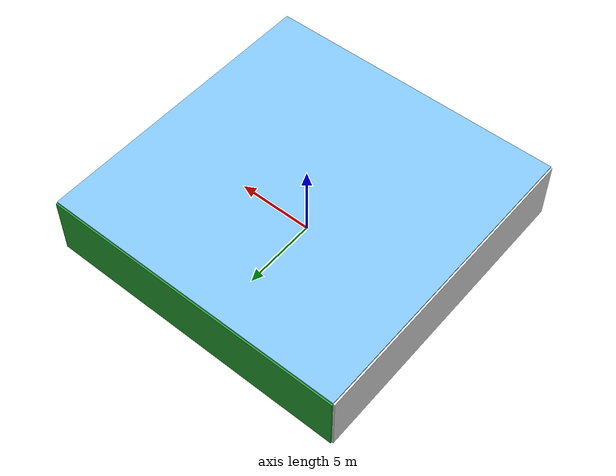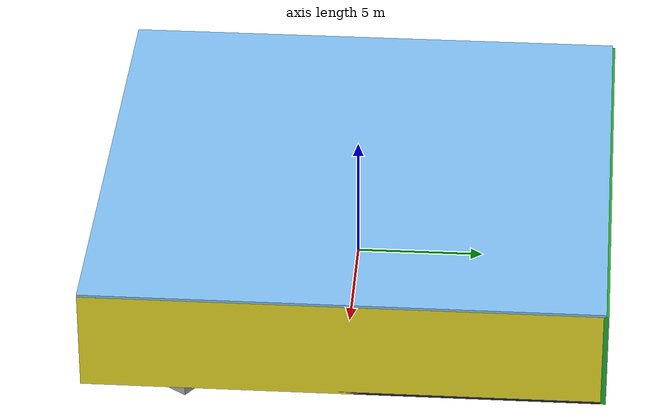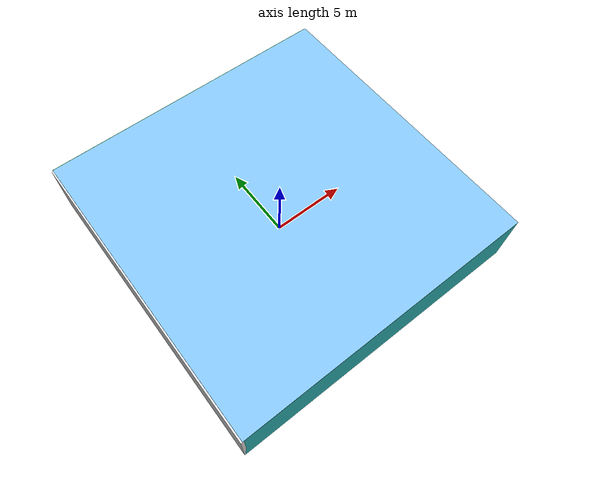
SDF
<sdf version="1.4">
 <world name="default">
  <physics type="ode">
   <max_step_size>0.001</max_step_size>
   <real_time_factor>1</real_time_factor>
   <real_time_update_rate>1000</real_time_update_rate>
   <gravity>0 0 -9.8</gravity>
  </physics>
  <scene><ambient>0.4 0.4 0.4 1</ambient><background>0.7 0.7 0.7 1</background><shadows>1</shadows></scene>
  <model name="Surrounding">
   <static>1</static>
   <link name="Ceiling">
    <collision name="Ceiling_Collision"><geometry><box><size>20 20 0.1</size></box></geometry></collision>
    <visual name="Ceiling_Visual">
     <geometry><box><size>20 20 0.1</size></box></geometry>
     <material>
      <script><uri>file://media/materials/scripts/gazebo.material</uri><name>Gazebo/SkyBlue</name></script>
     </material>
    </visual>
    <pose>0 0 4.05 0 0 0</pose>
   </link>
   <link name="Wall_South">
    <collision name="Wall_South_Collision">
     <geometry><box><size>20 0 4</size></box></geometry>
     <pose>0 0 2 0 -0 0</pose>
    </collision>
    <visual name="Wall_South_Visual">
     <pose>0 0 2 0 -0 0</pose>
     <geometry><box><size>20 0 4</size></box></geometry>
     <material>
      <script>
       <uri>file://media/materials/scripts/gazebo.material</uri>
       <name>Gazebo/TurquoiseGlowOutline</name>
      </script>
     </material>
    </visual>
    <velocity_decay><linear>0</linear><angular>0</angular></velocity_decay>
    <pose>0 -10 0 0 -0 0</pose>
   </link>
   <link name="Wall_East">
    <collision name="Wall_21_Collision">
     <geometry><box><size>20 0 4</size></box></geometry>
     <pose>0 0 2 0 -0 0</pose>
    </collision>
    <visual name="Wall_21_Visual">
     <pose>0 0 2 0 -0 0</pose>
     <geometry><box><size>20 0 4</size></box></geometry>
     <material>
      <script><uri>file://media/materials/scripts/gazebo.material</uri><name>Gazebo/YellowGlow</name></script>
     </material>
    </visual>
    <velocity_decay><linear>0</linear><angular>0</angular></velocity_decay>
    <pose>10 0 0 0 -0 1.5708</pose>
   </link>
   <link name="Wall_North">
    <collision name="Wall_22_Collision">
     <geometry><box><size>20 0.2 4</size></box></geometry>
     <pose>0 0 2 0 -0 0</pose>
    </collision>
    <visual name="Wall_22_Visual">
     <pose>0 0 2 0 -0 0</pose>
     <geometry><box><size>20 0.2 4</size></box></geometry>
     <material>
      <script><uri>file://media/materials/scripts/gazebo.material</uri><name>Gazebo/GreenGlow</name></script>
     </material>
    </visual>
    <velocity_decay><linear>0</linear><angular>0</angular></velocity_decay>
    <pose>0 10 0 0 -0 0</pose>
   </link>
   <link name="Wall_West">
    <collision name="Wall_23_Collision">
     <geometry><box><size>20 0.2 4</size></box></geometry>
     <pose>0 0 2 0 -0 0</pose>
    </collision>
    <visual name="Wall_23_Visual">
     <pose>0 0 2 0 -0 0</pose>
     <geometry><box><size>20 0.2 4</size></box></geometry>
     <material>
      <script><uri>file://media/materials/scripts/gazebo.material</uri><name>Gazebo/White</name></script>
     </material>
    </visual>
    <velocity_decay><linear>0</linear><angular>0</angular></velocity_decay>
    <pose>-10 0 0 0 0 -1.5708</pose>
   </link>
   <link name="Ground_link">
    <collision name="collision">
     <pose>0 0 .05 0 -0 0</pose>
     <geometry><box><size>20 20 0.1</size></box></geometry>
    </collision>
    <visual name="visual">
     <pose>0 0 .05 0 -0 0</pose>
     <geometry><box><size>20 20 0.1</size></box></geometry>
     <material>
      <script><uri>file://media/materials/scripts/gazebo.material</uri><name>Gazebo/Black</name></script>
     </material>
    </visual>
   </link>
   <static>1</static>
  </model>
  <spherical_coordinates>
   <surface_model>EARTH_WGS84</surface_model>
   <latitude_deg>0</latitude_deg>
   <longitude_deg>0</longitude_deg>
   <elevation>0</elevation>
   <heading_deg>0</heading_deg>
  </spherical_coordinates>
  <light name="lightball_0" type="diffuse">
   <diffuse>0.8 0.8 0.8 1</diffuse>
   <specular>0.2 0.2 0.2 1</specular>
   <attenuation>
    <range>100</range>
    <constant>0.7</constant>
    <linear>0.01</linear>
    <quadratic>0.001</quadratic>
   </attenuation>
   <direction>-0.5 0.1 -0.9</direction>
   <pose>-5.40286606653 8.04044214486 2.21904870855 0 0 0</pose>
  </light>
  <light name="lightball_1" type="diffuse">
   <diffuse>0.8 0.8 0.8 1</diffuse>
   <specular>0.2 0.2 0.2 1</specular>
   <attenuation>
    <range>100</range>
    <constant>0.7</constant>
    <linear>0.01</linear>
    <quadratic>0.001</quadratic>
   </attenuation>
   <direction>-0.5 0.1 -0.9</direction>
   <pose>5.45210643862 -5.12716403334 1.52860342609 0 0 0</pose>
  </light>
  <light name="lightball_2" type="diffuse">
   <diffuse>0.8 0.8 0.8 1</diffuse>
   <specular>0.2 0.2 0.2 1</specular>
   <attenuation>
    <range>100</range>
    <constant>0.7</constant>
    <linear>0.01</linear>
    <quadratic>0.001</quadratic>
   </attenuation>
   <direction>-0.5 0.1 -0.9</direction>
   <pose>-0.863692920424 2.70255459967 2.65258002631 0 0 0</pose>
  </light>
  <light name="lightball_3" type="diffuse">
   <diffuse>0.8 0.8 0.8 1</diffuse>
   <specular>0.2 0.2 0.2 1</specular>
   <attenuation>
    <range>100</range>
    <constant>0.7</constant>
    <linear>0.01</linear>
    <quadratic>0.001</quadratic>
   </attenuation>
   <direction>-0.5 0.1 -0.9</direction>
   <pose>-7.67006536575 -8.33806512639 2.2357343948 0 0 0</pose>
  </light>
  <light name="lightball_4" type="diffuse">
   <diffuse>0.8 0.8 0.8 1</diffuse>
   <specular>0.2 0.2 0.2 1</specular>
   <attenuation>
    <range>100</range>
    <constant>0.7</constant>
    <linear>0.01</linear>
    <quadratic>0.001</quadratic>
   </attenuation>
   <direction>-0.5 0.1 -0.9</direction>
   <pose>-3.91659950189 9.70031876269 1.01400086467 0 0 0</pose>
  </light>
  <light name="lightball_5" type="diffuse">
   <diffuse>0.8 0.8 0.8 1</diffuse>
   <specular>0.2 0.2 0.2 1</specular>
   <attenuation>
    <range>100</range>
    <constant>0.7</constant>
    <linear>0.01</linear>
    <quadratic>0.001</quadratic>
   </attenuation>
   <direction>-0.5 0.1 -0.9</direction>
   <pose>-3.23527977946 6.89717985948 2.81730831272 0 0 0</pose>
  </light>
  <light name="lightball_6" type="diffuse">
   <diffuse>0.8 0.8 0.8 1</diffuse>
   <specular>0.2 0.2 0.2 1</specular>
   <attenuation>
    <range>100</range>
    <constant>0.7</constant>
    <linear>0.01</linear>
    <quadratic>0.001</quadratic>
   </attenuation>
   <direction>-0.5 0.1 -0.9</direction>
   <pose>-3.26940838065 -2.28739500405 0.743165978826 0 0 0</pose>
  </light>
  <light name="lightball_7" type="diffuse">
   <diffuse>0.8 0.8 0.8 1</diffuse>
   <specular>0.2 0.2 0.2 1</specular>
   <attenuation>
    <range>100</range>
    <constant>0.7</constant>
    <linear>0.01</linear>
    <quadratic>0.001</quadratic>
   </attenuation>
   <direction>-0.5 0.1 -0.9</direction>
   <pose>1.45931071425 -1.99098021835 3.57747802713 0 0 0</pose>
  </light>
  <light name="lightball_8" type="diffuse">
   <diffuse>0.8 0.8 0.8 1</diffuse>
   <specular>0.2 0.2 0.2 1</specular>
   <attenuation>
    <range>100</range>
    <constant>0.7</constant>
    <linear>0.01</linear>
    <quadratic>0.001</quadratic>
   </attenuation>
   <direction>-0.5 0.1 -0.9</direction>
   <pose>-3.08317050525 -7.71316831881 2.65495875616 0 0 0</pose>
  </light>
  <light name="lightball_9" type="diffuse">
   <diffuse>0.8 0.8 0.8 1</diffuse>
   <specular>0.2 0.2 0.2 1</specular>
   <attenuation>
    <range>100</range>
    <constant>0.7</constant>
    <linear>0.01</linear>
    <quadratic>0.001</quadratic>
   </attenuation>
   <direction>-0.5 0.1 -0.9</direction>
   <pose>-9.29386204418 9.30761967243 3.10783935791 0 0 0</pose>
  </light>
  <include><uri>model://cabinet</uri><pose>-1.29181645329 0.791857728129 0 0 0 2.90605373631</pose></include>
  <include><uri>model://cabinet</uri><pose>-1.0633348037 4.61933848495 0 0 0 1.30356765658</pose></include>
  <include>
   <uri>model://construction_cone</uri>
   <pose>0.625963073617 -8.10693245592 0 0 0 2.17077421949</pose>
  </include>
  <include><uri>model://table</uri><pose>2.4991488027 -0.794219815246 0 0 0 0.231834897037</pose></include>
  <include><uri>model://cabinet</uri><pose>2.34253487524 7.17302493521 0 0 0 2.80775016235</pose></include>
  <include>
   <uri>model://construction_cone</uri>
   <pose>3.90164939685 5.44577546416 0 0 0 2.29980326571</pose>
  </include>
  <include>
   <uri>model://textured_shapes</uri>
   <pose>8.23834861729 -7.35785699726 0 0 0 2.53078189335</pose>
  </include>
  <include><uri>model://cabinet</uri><pose>6.32873933576 7.02376917704 0 0 0 2.41716141701</pose></include>
 </world>
</sdf>

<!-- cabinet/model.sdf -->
<sdf version="1.5">
  <model name="cabinet">
    <static>true</static>
    <link name="cabinet_bottom_plate">
      <inertial>
        <pose>0 0 -1 0 0 0</pose>
        <inertia>
          <ixx>2.050000</ixx>
          <ixy>0</ixy>
          <ixz>0</ixz>
          <iyy>2.050000</iyy>
          <iyz>0</iyz>
          <izz>2.050000</izz>
        </inertia>
        <mass>25.000000</mass>
      </inertial>
      <collision name="cabinet_bottom_plate_geom">
        <pose>0 0 0.010000 0 0 0</pose>
        <geometry>
          <box>
            <size>0.450000 0.450000 0.020000</size>
          </box>
        </geometry>
      </collision>
      <visual name="cabinet_bottom_plate_geom_visual">
        <pose>0 0 0.010000 0 0 0</pose>
        <geometry>
          <box>
            <size>0.450000 0.450000 0.020000</size>
          </box>
        </geometry>
        <material>
          <script>
            <uri>model://media/materials/scripts/gazebo.material</uri>
            <name>Gazebo/Wood</name>
          </script>
        </material>
      </visual>
      <collision name="cabinet_bottom_plate_geom_cabinet_back_plate">
        <pose>0.235000 0 0.510000 0 0 0</pose>
        <geometry>
          <box>
            <size>0.020000 0.450000 1.020000</size>
          </box>
        </geometry>
      </collision>
      <visual name="cabinet_bottom_plate_geom_cabinet_back_plate_visual">
        <pose>0.235000 0 0.510000 0 0 0</pose>
        <geometry>
          <box>
            <size>0.020000 0.450000 1.020000</size>
          </box>
        </geometry>
        <material>
          <script>
            <uri>model://media/materials/scripts/gazebo.material</uri>
            <name>Gazebo/Wood</name>
          </script>
        </material>
      </visual>
      <collision name="cabinet_bottom_plate_geom_cabinet_left_plate">
        <pose>0 0.235000 0.510000 0 0 0</pose>
        <geometry>
          <box>
            <size>0.450000 0.020000 1.020000</size>
          </box>
        </geometry>
      </collision>
      <visual name="cabinet_bottom_plate_geom_cabinet_left_plate_visual">
        <pose>0 0.235000 0.510000 0 0 0</pose>
        <geometry>
          <box>
            <size>0.450000 0.020000 1.020000</size>
          </box>
        </geometry>
        <material>
          <script>
            <uri>model://media/materials/scripts/gazebo.material</uri>
            <name>Gazebo/Wood</name>
          </script>
        </material>
      </visual>
      <collision name="cabinet_bottom_plate_geom_cabinet_middle_plate">
        <pose>0 0 0.510000 0 0 0</pose>
        <geometry>
          <box>
            <size>0.450000 0.450000 0.020000</size>
          </box>
        </geometry>
      </collision>
      <visual name="cabinet_bottom_plate_geom_cabinet_middle_plate_visual">
        <pose>0 0 0.510000 0 0 0</pose>
        <geometry>
          <box>
            <size>0.450000 0.450000 0.020000</size>
          </box>
        </geometry>
        <material>
          <script>
            <uri>model://media/materials/scripts/gazebo.material</uri>
            <name>Gazebo/Wood</name>
          </script>
        </material>
      </visual>
      <collision name="cabinet_bottom_plate_geom_cabinet_right_plate">
        <pose>0 -0.235000 0.510000 0 0 0</pose>
        <geometry>
          <box>
            <size>0.450000 0.020000 1.020000</size>
          </box>
        </geometry>
      </collision>
      <visual name="cabinet_bottom_plate_geom_cabinet_right_plate_visual">
        <pose>0 -0.235000 0.510000 0 0 0</pose>
        <geometry>
          <box>
            <size>0.450000 0.020000 1.020000</size>
          </box>
        </geometry>
        <material>
          <script>
            <uri>model://media/materials/scripts/gazebo.material</uri>
            <name>Gazebo/Wood</name>
          </script>
        </material>
      </visual>
      <collision name="cabinet_bottom_plate_geom_cabinet_top_plate">
        <pose>0 0 1.010000 0 0 0</pose>
        <geometry>
          <box>
            <size>0.450000 0.450000 0.020000</size>
          </box>
        </geometry>
      </collision>
      <visual name="cabinet_bottom_plate_geom_cabinet_top_plate_visual">
        <pose>0 0 1.010000 0 0 0</pose>
        <geometry>
          <box>
            <size>0.450000 0.450000 0.020000</size>
          </box>
        </geometry>
        <material>
          <script>
            <uri>model://media/materials/scripts/gazebo.material</uri>
            <name>Gazebo/Wood</name>
          </script>
        </material>
      </visual>
    </link>
  </model>
</sdf>

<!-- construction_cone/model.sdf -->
<sdf version="1.5">
  <model name="Construction Cone">
    <link name="link">
      <collision name="collision">
        <geometry>
          <mesh>
            <scale>10 10 10</scale>
            <uri>file://isr-testbed/construction_cone/meshes/construction_cone.dae</uri>
          </mesh>
        </geometry>
      </collision>
      <visual name="visual">
        <geometry>
          <mesh>
            <scale>10 10 10</scale>
            <uri>file://isr-testbed/construction_cone/meshes/construction_cone.dae</uri>
          </mesh>
        </geometry>
      </visual>
    </link>
  </model>
</sdf>

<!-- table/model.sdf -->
<sdf version="1.5">
  <model name="table">
    <static>true</static>
    <link name="link">
      <collision name="surface">
        <pose>0 0 1.0 0 0 0</pose>
        <geometry>
          <box>
            <size>1.5 0.8 0.03</size>
          </box>
        </geometry>
        <surface>
          <friction>
            <ode>
              <mu>0.6</mu>
              <mu2>0.6</mu2>
            </ode>
          </friction>
        </surface>
      </collision>
      <visual name="visual1">
        <pose>0 0 1.0 0 0 0</pose>
        <geometry>
          <box>
            <size>1.5 0.8 0.03</size>
          </box>
        </geometry>
        <material>
          <script>
            <uri>model://media/materials/scripts/gazebo.material</uri>
            <name>Gazebo/Wood</name>
          </script>
        </material>
      </visual>
      <collision name="front_left_leg">
        <pose>0.68 0.38 0.5 0 0 0</pose>
        <geometry>
          <cylinder>
            <radius>0.02</radius>
            <length>1.0</length>
          </cylinder>
        </geometry>
      </collision>
      <visual name="front_left_leg">
        <pose>0.68 0.38 0.5 0 0 0</pose>
        <geometry>
          <cylinder>
            <radius>0.02</radius>
            <length>1.0</length>
          </cylinder>
        </geometry>
        <material>
          <script>
            <uri>model://media/materials/scripts/gazebo.material</uri>
            <name>Gazebo/Grey</name>
          </script>
        </material>
      </visual>
      <collision name="front_right_leg">
        <pose>0.68 -0.38 0.5 0 0 0</pose>
        <geometry>
          <cylinder>
            <radius>0.02</radius>
            <length>1.0</length>
          </cylinder>
        </geometry>
      </collision>
      <visual name="front_right_leg">
        <pose>0.68 -0.38 0.5 0 0 0</pose>
        <geometry>
          <cylinder>
            <radius>0.02</radius>
            <length>1.0</length>
          </cylinder>
        </geometry>
        <material>
          <script>
            <uri>model://media/materials/scripts/gazebo.material</uri>
            <name>Gazebo/Grey</name>
          </script>
        </material>
      </visual>
      <collision name="back_right_leg">
        <pose>-0.68 -0.38 0.5 0 0 0</pose>
        <geometry>
          <cylinder>
            <radius>0.02</radius>
            <length>1.0</length>
          </cylinder>
        </geometry>
      </collision>
      <visual name="back_right_leg">
        <pose>-0.68 -0.38 0.5 0 0 0</pose>
        <geometry>
          <cylinder>
            <radius>0.02</radius>
            <length>1.0</length>
          </cylinder>
        </geometry>
        <material>
          <script>
            <uri>model://media/materials/scripts/gazebo.material</uri>
            <name>Gazebo/Grey</name>
          </script>
        </material>
      </visual>
      <collision name="back_left_leg">
        <pose>-0.68 0.38 0.5 0 0 0</pose>
        <geometry>
          <cylinder>
            <radius>0.02</radius>
            <length>1.0</length>
          </cylinder>
        </geometry>
      </collision>
      <visual name="back_left_leg">
        <pose>-0.68 0.38 0.5 0 0 0</pose>
        <geometry>
          <cylinder>
            <radius>0.02</radius>
            <length>1.0</length>
          </cylinder>
        </geometry>
        <material>
          <script>
            <uri>model://media/materials/scripts/gazebo.material</uri>
            <name>Gazebo/Grey</name>
          </script>
        </material>
      </visual>
    </link>
  </model>
</sdf>

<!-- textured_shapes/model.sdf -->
<sdf version="1.6">
  <model name="textured_shapes">
    <pose>0 0 0.5 0 0 0</pose>
    <link name="box">
      <pose>0 -1.5 0 0 0 0</pose>
      <collision name="collision">
        <geometry>
          <box>
            <size>1 1 1</size>
          </box>
        </geometry>
      </collision>
      <visual name="visual">
        <geometry>
          <box>
            <size>1 1 1</size>
          </box>
        </geometry>
        <material>
          <script>
            <uri>model://../model_source/models/textured_shapes/materials/scripts</uri>
            <uri>model://../model_source/models/textured_shapes/materials/textures</uri>
            <name>TexturedShape/Squares</name>
          </script>
        </material>
      </visual>
    </link>
    <link name="sphere">
      <collision name="collision">
        <geometry>
          <sphere>
            <radius>0.5</radius>
          </sphere>
        </geometry>
      </collision>
      <visual name="visual">
        <geometry>
          <sphere>
            <radius>0.5</radius>
          </sphere>
        </geometry>
        <material>
          <script>
            <uri>model://../model_source/models/textured_shapes/materials/scripts</uri>
            <uri>model://../model_source/models/textured_shapes/materials/textures</uri>
            <name>TexturedShape/Squares</name>
          </script>
        </material>
      </visual>
    </link>
    <link name="cylinder">
      <pose>0 1.5 0 0 0 0</pose>
      <collision name="collision">
        <geometry>
          <cylinder>
            <radius>0.5</radius>
            <length>1</length>
          </cylinder>
        </geometry>
      </collision>
      <visual name="visual">
        <geometry>
          <cylinder>
            <radius>0.5</radius>
            <length>1</length>
          </cylinder>
        </geometry>
        <material>
          <script>
            <uri>model://../model_source/models/textured_shapes/materials/scripts</uri>
            <uri>model://../model_source/models/textured_shapes/materials/textures</uri>
            <name>TexturedShape/Squares</name>
          </script>
        </material>
      </visual>
    </link>
  </model>
</sdf>
